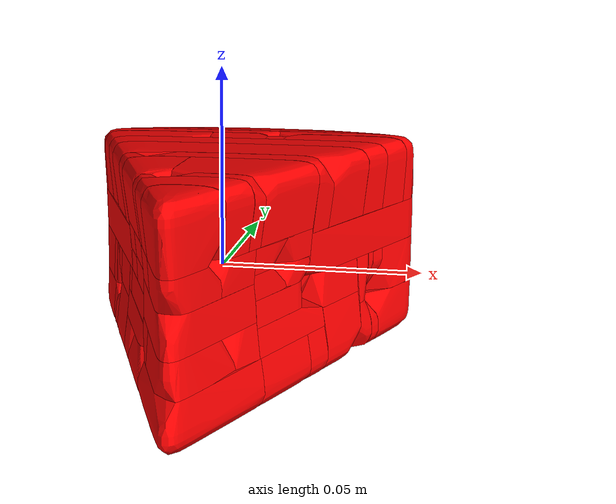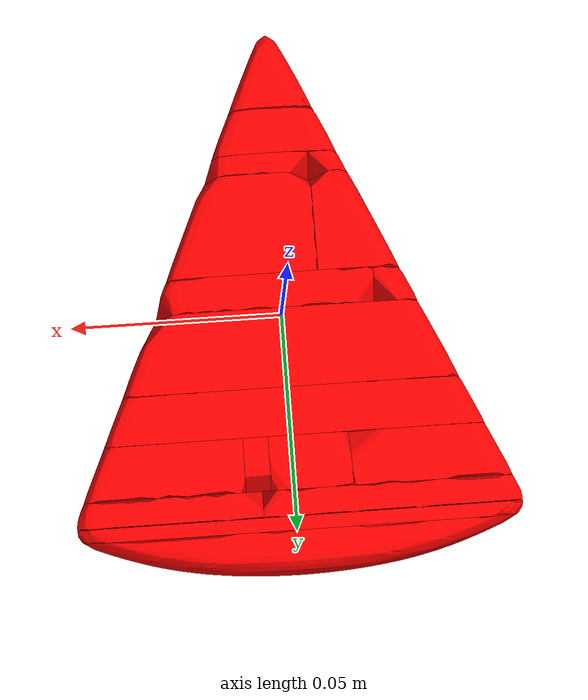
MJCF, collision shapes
<?xml version="1.0" ?>
<mujoco model="cheese">
	<compiler meshdir="cheese/meshes" texturedir="cheese/textures" angle="radian" autolimits="true" balanceinertia="true" boundmass="0.000001" boundinertia="0.000001"/>
	<default>
		<default class="visual">
			<geom contype="0" conaffinity="0"/>
		</default>
		<default class="collision">
			<geom rgba="1.0 0.0 0.0 0.0"/>
		</default>
	</default>
	<asset>
		<mesh name="Cheese" file="obj/Cheese.obj" scale="1.0 1.0 1.0"/>
		<mesh name="Cheese_001" file="stl/Cheese_001.stl" scale="1.0 1.0 1.0"/>
		<mesh name="Cheese_002" file="stl/Cheese_002.stl" scale="1.0 1.0 1.0"/>
		<mesh name="Cheese_003" file="stl/Cheese_003.stl" scale="1.0 1.0 1.0"/>
		<mesh name="Cheese_004" file="stl/Cheese_004.stl" scale="1.0 1.0 1.0"/>
		<mesh name="Cheese_005" file="stl/Cheese_005.stl" scale="1.0 1.0 1.0"/>
		<mesh name="Cheese_006" file="stl/Cheese_006.stl" scale="1.0 1.0 1.0"/>
		<mesh name="Cheese_007" file="stl/Cheese_007.stl" scale="1.0 1.0 1.0"/>
		<mesh name="Cheese_008" file="stl/Cheese_008.stl" scale="1.0 1.0 1.0"/>
		<mesh name="Cheese_009" file="stl/Cheese_009.stl" scale="1.0 1.0 1.0"/>
		<mesh name="Cheese_010" file="stl/Cheese_010.stl" scale="1.0 1.0 1.0"/>
		<mesh name="Cheese_011" file="stl/Cheese_011.stl" scale="1.0 1.0 1.0"/>
		<mesh name="Cheese_012" file="stl/Cheese_012.stl" scale="1.0 1.0 1.0"/>
		<mesh name="Cheese_013" file="stl/Cheese_013.stl" scale="1.0 1.0 1.0"/>
		<mesh name="Cheese_014" file="stl/Cheese_014.stl" scale="1.0 1.0 1.0"/>
		<mesh name="Cheese_015" file="stl/Cheese_015.stl" scale="1.0 1.0 1.0"/>
		<mesh name="Cheese_016" file="stl/Cheese_016.stl" scale="1.0 1.0 1.0"/>
		<mesh name="Cheese_017" file="stl/Cheese_017.stl" scale="1.0 1.0 1.0"/>
		<mesh name="Cheese_018" file="stl/Cheese_018.stl" scale="1.0 1.0 1.0"/>
		<mesh name="Cheese_019" file="stl/Cheese_019.stl" scale="1.0 1.0 1.0"/>
		<mesh name="Cheese_020" file="stl/Cheese_020.stl" scale="1.0 1.0 1.0"/>
		<mesh name="Cheese_021" file="stl/Cheese_021.stl" scale="1.0 1.0 1.0"/>
		<mesh name="Cheese_022" file="stl/Cheese_022.stl" scale="1.0 1.0 1.0"/>
		<mesh name="Cheese_023" file="stl/Cheese_023.stl" scale="1.0 1.0 1.0"/>
		<mesh name="Cheese_024" file="stl/Cheese_024.stl" scale="1.0 1.0 1.0"/>
		<mesh name="Cheese_025" file="stl/Cheese_025.stl" scale="1.0 1.0 1.0"/>
		<mesh name="Cheese_026" file="stl/Cheese_026.stl" scale="1.0 1.0 1.0"/>
		<mesh name="Cheese_027" file="stl/Cheese_027.stl" scale="1.0 1.0 1.0"/>
		<mesh name="Cheese_028" file="stl/Cheese_028.stl" scale="1.0 1.0 1.0"/>
		<mesh name="Cheese_029" file="stl/Cheese_029.stl" scale="1.0 1.0 1.0"/>
		<mesh name="Cheese_030" file="stl/Cheese_030.stl" scale="1.0 1.0 1.0"/>
		<mesh name="Cheese_031" file="stl/Cheese_031.stl" scale="1.0 1.0 1.0"/>
		<mesh name="Cheese_032" file="stl/Cheese_032.stl" scale="1.0 1.0 1.0"/>
		<mesh name="Cheese_033" file="stl/Cheese_033.stl" scale="1.0 1.0 1.0"/>
		<mesh name="Cheese_034" file="stl/Cheese_034.stl" scale="1.0 1.0 1.0"/>
		<mesh name="Cheese_035" file="stl/Cheese_035.stl" scale="1.0 1.0 1.0"/>
		<mesh name="Cheese_036" file="stl/Cheese_036.stl" scale="1.0 1.0 1.0"/>
		<mesh name="Cheese_037" file="stl/Cheese_037.stl" scale="1.0 1.0 1.0"/>
		<mesh name="Cheese_038" file="stl/Cheese_038.stl" scale="1.0 1.0 1.0"/>
		<mesh name="Cheese_039" file="stl/Cheese_039.stl" scale="1.0 1.0 1.0"/>
		<mesh name="Cheese_040" file="stl/Cheese_040.stl" scale="1.0 1.0 1.0"/>
		<mesh name="Cheese_041" file="stl/Cheese_041.stl" scale="1.0 1.0 1.0"/>
		<mesh name="Cheese_042" file="stl/Cheese_042.stl" scale="1.0 1.0 1.0"/>
		<mesh name="Cheese_043" file="stl/Cheese_043.stl" scale="1.0 1.0 1.0"/>
		<mesh name="Cheese_044" file="stl/Cheese_044.stl" scale="1.0 1.0 1.0"/>
		<mesh name="Cheese_045" file="stl/Cheese_045.stl" scale="1.0 1.0 1.0"/>
		<material name="M_Cheese" texture="T_Cheese"/>
		<texture name="T_Cheese" type="2d" file="T_Cheese.png"/>
	</asset>
	<worldbody>
		<body name="cheese" pos="0.0 0.0 0.0" quat="1.0 0.0 0.0 0.0">
			<inertial mass="0.3691449463367462" pos="-7.395008196908748e-07 0.017372358590364456 8.131019967549946e-06" quat="0.001535908435471356 0.707662045955658 0.7065489292144775 0.0008350062416866422" diaginertia="0.00021558407752308995 0.00046009436482563615 0.0004986084531992674"/>
			<geom name="Cheese" type="mesh" pos="0.0 0.0 0.0" quat="1.0 0.0 0.0 0.0" mesh="Cheese" material="M_Cheese" class="visual"/>
			<geom name="Cheese_001" type="mesh" pos="0.0 0.0 0.0" quat="1.0 0.0 0.0 0.0" mesh="Cheese_001" class="collision"/>
			<geom name="Cheese_002" type="mesh" pos="0.0 0.0 0.0" quat="1.0 0.0 0.0 0.0" mesh="Cheese_002" class="collision"/>
			<geom name="Cheese_003" type="mesh" pos="0.0 0.0 0.0" quat="1.0 0.0 0.0 0.0" mesh="Cheese_003" class="collision"/>
			<geom name="Cheese_004" type="mesh" pos="0.0 0.0 0.0" quat="1.0 0.0 0.0 0.0" mesh="Cheese_004" class="collision"/>
			<geom name="Cheese_005" type="mesh" pos="0.0 0.0 0.0" quat="1.0 0.0 0.0 0.0" mesh="Cheese_005" class="collision"/>
			<geom name="Cheese_006" type="mesh" pos="0.0 0.0 0.0" quat="1.0 0.0 0.0 0.0" mesh="Cheese_006" class="collision"/>
			<geom name="Cheese_007" type="mesh" pos="0.0 0.0 0.0" quat="1.0 0.0 0.0 0.0" mesh="Cheese_007" class="collision"/>
			<geom name="Cheese_008" type="mesh" pos="0.0 0.0 0.0" quat="1.0 0.0 0.0 0.0" mesh="Cheese_008" class="collision"/>
			<geom name="Cheese_009" type="mesh" pos="0.0 0.0 0.0" quat="1.0 0.0 0.0 0.0" mesh="Cheese_009" class="collision"/>
			<geom name="Cheese_010" type="mesh" pos="0.0 0.0 0.0" quat="1.0 0.0 0.0 0.0" mesh="Cheese_010" class="collision"/>
			<geom name="Cheese_011" type="mesh" pos="0.0 0.0 0.0" quat="1.0 0.0 0.0 0.0" mesh="Cheese_011" class="collision"/>
			<geom name="Cheese_012" type="mesh" pos="0.0 0.0 0.0" quat="1.0 0.0 0.0 0.0" mesh="Cheese_012" class="collision"/>
			<geom name="Cheese_013" type="mesh" pos="0.0 0.0 0.0" quat="1.0 0.0 0.0 0.0" mesh="Cheese_013" class="collision"/>
			<geom name="Cheese_014" type="mesh" pos="0.0 0.0 0.0" quat="1.0 0.0 0.0 0.0" mesh="Cheese_014" class="collision"/>
			<geom name="Cheese_015" type="mesh" pos="0.0 0.0 0.0" quat="1.0 0.0 0.0 0.0" mesh="Cheese_015" class="collision"/>
			<geom name="Cheese_016" type="mesh" pos="0.0 0.0 0.0" quat="1.0 0.0 0.0 0.0" mesh="Cheese_016" class="collision"/>
			<geom name="Cheese_017" type="mesh" pos="0.0 0.0 0.0" quat="1.0 0.0 0.0 0.0" mesh="Cheese_017" class="collision"/>
			<geom name="Cheese_018" type="mesh" pos="0.0 0.0 0.0" quat="1.0 0.0 0.0 0.0" mesh="Cheese_018" class="collision"/>
			<geom name="Cheese_019" type="mesh" pos="0.0 0.0 0.0" quat="1.0 0.0 0.0 0.0" mesh="Cheese_019" class="collision"/>
			<geom name="Cheese_020" type="mesh" pos="0.0 0.0 0.0" quat="1.0 0.0 0.0 0.0" mesh="Cheese_020" class="collision"/>
			<geom name="Cheese_021" type="mesh" pos="0.0 0.0 0.0" quat="1.0 0.0 0.0 0.0" mesh="Cheese_021" class="collision"/>
			<geom name="Cheese_022" type="mesh" pos="0.0 0.0 0.0" quat="1.0 0.0 0.0 0.0" mesh="Cheese_022" class="collision"/>
			<geom name="Cheese_023" type="mesh" pos="0.0 0.0 0.0" quat="1.0 0.0 0.0 0.0" mesh="Cheese_023" class="collision"/>
			<geom name="Cheese_024" type="mesh" pos="0.0 0.0 0.0" quat="1.0 0.0 0.0 0.0" mesh="Cheese_024" class="collision"/>
			<geom name="Cheese_025" type="mesh" pos="0.0 0.0 0.0" quat="1.0 0.0 0.0 0.0" mesh="Cheese_025" class="collision"/>
			<geom name="Cheese_026" type="mesh" pos="0.0 0.0 0.0" quat="1.0 0.0 0.0 0.0" mesh="Cheese_026" class="collision"/>
			<geom name="Cheese_027" type="mesh" pos="0.0 0.0 0.0" quat="1.0 0.0 0.0 0.0" mesh="Cheese_027" class="collision"/>
			<geom name="Cheese_028" type="mesh" pos="0.0 0.0 0.0" quat="1.0 0.0 0.0 0.0" mesh="Cheese_028" class="collision"/>
			<geom name="Cheese_029" type="mesh" pos="0.0 0.0 0.0" quat="1.0 0.0 0.0 0.0" mesh="Cheese_029" class="collision"/>
			<geom name="Cheese_030" type="mesh" pos="0.0 0.0 0.0" quat="1.0 0.0 0.0 0.0" mesh="Cheese_030" class="collision"/>
			<geom name="Cheese_031" type="mesh" pos="0.0 0.0 0.0" quat="1.0 0.0 0.0 0.0" mesh="Cheese_031" class="collision"/>
			<geom name="Cheese_032" type="mesh" pos="0.0 0.0 0.0" quat="1.0 0.0 0.0 0.0" mesh="Cheese_032" class="collision"/>
			<geom name="Cheese_033" type="mesh" pos="0.0 0.0 0.0" quat="1.0 0.0 0.0 0.0" mesh="Cheese_033" class="collision"/>
			<geom name="Cheese_034" type="mesh" pos="0.0 0.0 0.0" quat="1.0 0.0 0.0 0.0" mesh="Cheese_034" class="collision"/>
			<geom name="Cheese_035" type="mesh" pos="0.0 0.0 0.0" quat="1.0 0.0 0.0 0.0" mesh="Cheese_035" class="collision"/>
			<geom name="Cheese_036" type="mesh" pos="0.0 0.0 0.0" quat="1.0 0.0 0.0 0.0" mesh="Cheese_036" class="collision"/>
			<geom name="Cheese_037" type="mesh" pos="0.0 0.0 0.0" quat="1.0 0.0 0.0 0.0" mesh="Cheese_037" class="collision"/>
			<geom name="Cheese_038" type="mesh" pos="0.0 0.0 0.0" quat="1.0 0.0 0.0 0.0" mesh="Cheese_038" class="collision"/>
			<geom name="Cheese_039" type="mesh" pos="0.0 0.0 0.0" quat="1.0 0.0 0.0 0.0" mesh="Cheese_039" class="collision"/>
			<geom name="Cheese_040" type="mesh" pos="0.0 0.0 0.0" quat="1.0 0.0 0.0 0.0" mesh="Cheese_040" class="collision"/>
			<geom name="Cheese_041" type="mesh" pos="0.0 0.0 0.0" quat="1.0 0.0 0.0 0.0" mesh="Cheese_041" class="collision"/>
			<geom name="Cheese_042" type="mesh" pos="0.0 0.0 0.0" quat="1.0 0.0 0.0 0.0" mesh="Cheese_042" class="collision"/>
			<geom name="Cheese_043" type="mesh" pos="0.0 0.0 0.0" quat="1.0 0.0 0.0 0.0" mesh="Cheese_043" class="collision"/>
			<geom name="Cheese_044" type="mesh" pos="0.0 0.0 0.0" quat="1.0 0.0 0.0 0.0" mesh="Cheese_044" class="collision"/>
			<geom name="Cheese_045" type="mesh" pos="0.0 0.0 0.0" quat="1.0 0.0 0.0 0.0" mesh="Cheese_045" class="collision"/>
		</body>
	</worldbody>
	<equality/>
</mujoco>
